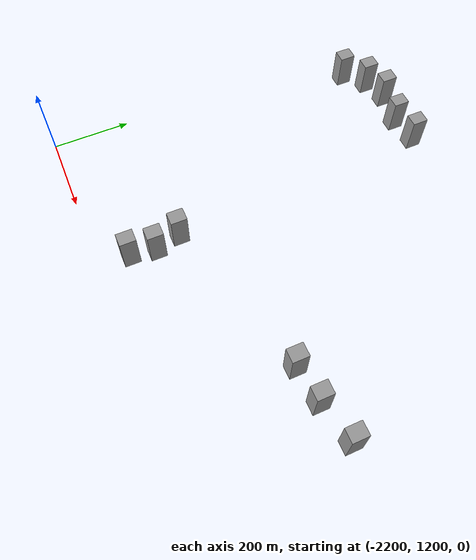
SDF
<sdf version="1.7">
 <world name="default">
  <model name="huge_building_9">
   <link name="link">
    <inertial>
     <mass>137299</mass>
     <inertia>
      <ixx>1.37911e+08</ixx>
      <ixy>0</ixy>
      <ixz>0</ixz>
      <iyy>1.32035e+08</iyy>
      <iyz>0</iyz>
      <izz>3.13216e+07</izz>
     </inertia>
    </inertial>
    <visual name="visual">
     <geometry><box><size>33.3468 40.3177 102.117</size></box></geometry>
     <material>
      <script><name>Gazebo/Grey</name><uri>file://media/materials/scripts/gazebo.material</uri></script>
      <shader type="pixel"/>
     </material>
    </visual>
    <collision name="collision">
     <geometry><box><size>33.3468 40.3177 102.117</size></box></geometry>
     <surface>
      <friction>
       <ode><mu>1</mu><mu2>1</mu2><fdir1>0 0 0</fdir1><slip1>0</slip1><slip2>0</slip2></ode>
       <torsional>
        <coefficient>1</coefficient>
        <patch_radius>0</patch_radius>
        <surface_radius>0</surface_radius>
        <use_patch_radius>1</use_patch_radius>
        <ode><slip>0</slip></ode>
       </torsional>
      </friction>
      <bounce><restitution_coefficient>0</restitution_coefficient><threshold>1e+06</threshold></bounce>
      <contact>
       <collide_without_contact>0</collide_without_contact>
       <collide_without_contact_bitmask>1</collide_without_contact_bitmask>
       <collide_bitmask>1</collide_bitmask>
       <ode>
        <soft_cfm>0</soft_cfm>
        <soft_erp>0.2</soft_erp>
        <kp>1e+13</kp>
        <kd>1</kd>
        <max_vel>0.01</max_vel>
        <min_depth>0</min_depth>
       </ode>
       <bullet>
        <split_impulse>1</split_impulse>
        <split_impulse_penetration_threshold>-0.01</split_impulse_penetration_threshold>
        <soft_cfm>0</soft_cfm>
        <soft_erp>0.2</soft_erp>
        <kp>1e+13</kp>
        <kd>1</kd>
       </bullet>
      </contact>
     </surface>
    </collision>
   </link>
   <static>0</static>
   <pose>-1864.15 2105.7 9 0 -0 0</pose>
  </model>
  <model name="huge_building_61">
   <link name="link">
    <inertial>
     <mass>137299</mass>
     <inertia>
      <ixx>1.37911e+08</ixx>
      <ixy>0</ixy>
      <ixz>0</ixz>
      <iyy>1.32035e+08</iyy>
      <iyz>0</iyz>
      <izz>3.13216e+07</izz>
     </inertia>
    </inertial>
    <visual name="visual">
     <geometry><box><size>33.3468 40.3177 102.117</size></box></geometry>
     <material>
      <script><name>Gazebo/Grey</name><uri>file://media/materials/scripts/gazebo.material</uri></script>
      <shader type="pixel"/>
     </material>
    </visual>
    <collision name="collision">
     <geometry><box><size>33.3468 40.3177 102.117</size></box></geometry>
     <surface>
      <friction>
       <ode><mu>1</mu><mu2>1</mu2><fdir1>0 0 0</fdir1><slip1>0</slip1><slip2>0</slip2></ode>
       <torsional>
        <coefficient>1</coefficient>
        <patch_radius>0</patch_radius>
        <surface_radius>0</surface_radius>
        <use_patch_radius>1</use_patch_radius>
        <ode><slip>0</slip></ode>
       </torsional>
      </friction>
      <bounce><restitution_coefficient>0</restitution_coefficient><threshold>1e+06</threshold></bounce>
      <contact>
       <collide_without_contact>0</collide_without_contact>
       <collide_without_contact_bitmask>1</collide_without_contact_bitmask>
       <collide_bitmask>1</collide_bitmask>
       <ode>
        <soft_cfm>0</soft_cfm>
        <soft_erp>0.2</soft_erp>
        <kp>1e+13</kp>
        <kd>1</kd>
        <max_vel>0.01</max_vel>
        <min_depth>0</min_depth>
       </ode>
       <bullet>
        <split_impulse>1</split_impulse>
        <split_impulse_penetration_threshold>-0.01</split_impulse_penetration_threshold>
        <soft_cfm>0</soft_cfm>
        <soft_erp>0.2</soft_erp>
        <kp>1e+13</kp>
        <kd>1</kd>
       </bullet>
      </contact>
     </surface>
    </collision>
   </link>
   <static>0</static>
   <pose>-1200.47 1555.99 54 0 -0 0</pose>
  </model>
  <model name="huge_building_62">
   <link name="link">
    <inertial>
     <mass>137299</mass>
     <inertia>
      <ixx>1.37911e+08</ixx>
      <ixy>0</ixy>
      <ixz>0</ixz>
      <iyy>1.32035e+08</iyy>
      <iyz>0</iyz>
      <izz>3.13216e+07</izz>
     </inertia>
    </inertial>
    <visual name="visual">
     <geometry><box><size>33.3468 40.3177 102.117</size></box></geometry>
     <material>
      <script><name>Gazebo/Grey</name><uri>file://media/materials/scripts/gazebo.material</uri></script>
      <shader type="pixel"/>
     </material>
    </visual>
    <collision name="collision">
     <geometry><box><size>33.3468 40.3177 102.117</size></box></geometry>
     <surface>
      <friction>
       <ode><mu>1</mu><mu2>1</mu2><fdir1>0 0 0</fdir1><slip1>0</slip1><slip2>0</slip2></ode>
       <torsional>
        <coefficient>1</coefficient>
        <patch_radius>0</patch_radius>
        <surface_radius>0</surface_radius>
        <use_patch_radius>1</use_patch_radius>
        <ode><slip>0</slip></ode>
       </torsional>
      </friction>
      <bounce><restitution_coefficient>0</restitution_coefficient><threshold>1e+06</threshold></bounce>
      <contact>
       <collide_without_contact>0</collide_without_contact>
       <collide_without_contact_bitmask>1</collide_without_contact_bitmask>
       <collide_bitmask>1</collide_bitmask>
       <ode>
        <soft_cfm>0</soft_cfm>
        <soft_erp>0.2</soft_erp>
        <kp>1e+13</kp>
        <kd>1</kd>
        <max_vel>0.01</max_vel>
        <min_depth>0</min_depth>
       </ode>
       <bullet>
        <split_impulse>1</split_impulse>
        <split_impulse_penetration_threshold>-0.01</split_impulse_penetration_threshold>
        <soft_cfm>0</soft_cfm>
        <soft_erp>0.2</soft_erp>
        <kp>1e+13</kp>
        <kd>1</kd>
       </bullet>
      </contact>
     </surface>
    </collision>
   </link>
   <static>0</static>
   <pose>-1298.92 1530.03 61 0 -0 0</pose>
  </model>
  <model name="huge_building_63">
   <link name="link">
    <inertial>
     <mass>137299</mass>
     <inertia>
      <ixx>1.37911e+08</ixx>
      <ixy>0</ixy>
      <ixz>0</ixz>
      <iyy>1.32035e+08</iyy>
      <iyz>0</iyz>
      <izz>3.13216e+07</izz>
     </inertia>
    </inertial>
    <visual name="visual">
     <geometry><box><size>33.3468 40.3177 102.117</size></box></geometry>
     <material>
      <script><name>Gazebo/Grey</name><uri>file://media/materials/scripts/gazebo.material</uri></script>
      <shader type="pixel"/>
     </material>
    </visual>
    <collision name="collision">
     <geometry><box><size>33.3468 40.3177 102.117</size></box></geometry>
     <surface>
      <friction>
       <ode><mu>1</mu><mu2>1</mu2><fdir1>0 0 0</fdir1><slip1>0</slip1><slip2>0</slip2></ode>
       <torsional>
        <coefficient>1</coefficient>
        <patch_radius>0</patch_radius>
        <surface_radius>0</surface_radius>
        <use_patch_radius>1</use_patch_radius>
        <ode><slip>0</slip></ode>
       </torsional>
      </friction>
      <bounce><restitution_coefficient>0</restitution_coefficient><threshold>1e+06</threshold></bounce>
      <contact>
       <collide_without_contact>0</collide_without_contact>
       <collide_without_contact_bitmask>1</collide_without_contact_bitmask>
       <collide_bitmask>1</collide_bitmask>
       <ode>
        <soft_cfm>0</soft_cfm>
        <soft_erp>0.2</soft_erp>
        <kp>1e+13</kp>
        <kd>1</kd>
        <max_vel>0.01</max_vel>
        <min_depth>0</min_depth>
       </ode>
       <bullet>
        <split_impulse>1</split_impulse>
        <split_impulse_penetration_threshold>-0.01</split_impulse_penetration_threshold>
        <soft_cfm>0</soft_cfm>
        <soft_erp>0.2</soft_erp>
        <kp>1e+13</kp>
        <kd>1</kd>
       </bullet>
      </contact>
     </surface>
    </collision>
   </link>
   <static>0</static>
   <pose>-1388.72 1518.67 61 0 -0 0</pose>
  </model>
  <model name="huge_building_67">
   <link name="link">
    <inertial>
     <mass>137299</mass>
     <inertia>
      <ixx>1.37911e+08</ixx>
      <ixy>0</ixy>
      <ixz>0</ixz>
      <iyy>1.32035e+08</iyy>
      <iyz>0</iyz>
      <izz>3.13216e+07</izz>
     </inertia>
    </inertial>
    <visual name="visual">
     <geometry><box><size>33.3468 40.3177 102.117</size></box></geometry>
     <material>
      <script><name>Gazebo/Grey</name><uri>file://media/materials/scripts/gazebo.material</uri></script>
      <shader type="pixel"/>
     </material>
    </visual>
    <collision name="collision">
     <geometry><box><size>33.3468 40.3177 102.117</size></box></geometry>
     <surface>
      <friction>
       <ode><mu>1</mu><mu2>1</mu2><fdir1>0 0 0</fdir1><slip1>0</slip1><slip2>0</slip2></ode>
       <torsional>
        <coefficient>1</coefficient>
        <patch_radius>0</patch_radius>
        <surface_radius>0</surface_radius>
        <use_patch_radius>1</use_patch_radius>
        <ode><slip>0</slip></ode>
       </torsional>
      </friction>
      <bounce><restitution_coefficient>0</restitution_coefficient><threshold>1e+06</threshold></bounce>
      <contact>
       <collide_without_contact>0</collide_without_contact>
       <collide_without_contact_bitmask>1</collide_without_contact_bitmask>
       <collide_bitmask>1</collide_bitmask>
       <ode>
        <soft_cfm>0</soft_cfm>
        <soft_erp>0.2</soft_erp>
        <kp>1e+13</kp>
        <kd>1</kd>
        <max_vel>0.01</max_vel>
        <min_depth>0</min_depth>
       </ode>
       <bullet>
        <split_impulse>1</split_impulse>
        <split_impulse_penetration_threshold>-0.01</split_impulse_penetration_threshold>
        <soft_cfm>0</soft_cfm>
        <soft_erp>0.2</soft_erp>
        <kp>1e+13</kp>
        <kd>1</kd>
       </bullet>
      </contact>
     </surface>
    </collision>
   </link>
   <static>0</static>
   <pose>-1797.04 1279.27 48 0 -0 0</pose>
  </model>
  <model name="huge_building_68">
   <link name="link">
    <inertial>
     <mass>137299</mass>
     <inertia>
      <ixx>1.37911e+08</ixx>
      <ixy>0</ixy>
      <ixz>0</ixz>
      <iyy>1.32035e+08</iyy>
      <iyz>0</iyz>
      <izz>3.13216e+07</izz>
     </inertia>
    </inertial>
    <visual name="visual">
     <geometry><box><size>33.3468 40.3177 102.117</size></box></geometry>
     <material>
      <script><name>Gazebo/Grey</name><uri>file://media/materials/scripts/gazebo.material</uri></script>
      <shader type="pixel"/>
     </material>
    </visual>
    <collision name="collision">
     <geometry><box><size>33.3468 40.3177 102.117</size></box></geometry>
     <surface>
      <friction>
       <ode><mu>1</mu><mu2>1</mu2><fdir1>0 0 0</fdir1><slip1>0</slip1><slip2>0</slip2></ode>
       <torsional>
        <coefficient>1</coefficient>
        <patch_radius>0</patch_radius>
        <surface_radius>0</surface_radius>
        <use_patch_radius>1</use_patch_radius>
        <ode><slip>0</slip></ode>
       </torsional>
      </friction>
      <bounce><restitution_coefficient>0</restitution_coefficient><threshold>1e+06</threshold></bounce>
      <contact>
       <collide_without_contact>0</collide_without_contact>
       <collide_without_contact_bitmask>1</collide_without_contact_bitmask>
       <collide_bitmask>1</collide_bitmask>
       <ode>
        <soft_cfm>0</soft_cfm>
        <soft_erp>0.2</soft_erp>
        <kp>1e+13</kp>
        <kd>1</kd>
        <max_vel>0.01</max_vel>
        <min_depth>0</min_depth>
       </ode>
       <bullet>
        <split_impulse>1</split_impulse>
        <split_impulse_penetration_threshold>-0.01</split_impulse_penetration_threshold>
        <soft_cfm>0</soft_cfm>
        <soft_erp>0.2</soft_erp>
        <kp>1e+13</kp>
        <kd>1</kd>
       </bullet>
      </contact>
     </surface>
    </collision>
   </link>
   <static>0</static>
   <pose>-1790.33 1343.06 43 0 -0 0</pose>
  </model>
  <model name="huge_building_69">
   <link name="link">
    <inertial>
     <mass>137299</mass>
     <inertia>
      <ixx>1.37911e+08</ixx>
      <ixy>0</ixy>
      <ixz>0</ixz>
      <iyy>1.32035e+08</iyy>
      <iyz>0</iyz>
      <izz>3.13216e+07</izz>
     </inertia>
    </inertial>
    <visual name="visual">
     <geometry><box><size>33.3468 40.3177 102.117</size></box></geometry>
     <material>
      <script><name>Gazebo/Grey</name><uri>file://media/materials/scripts/gazebo.material</uri></script>
      <shader type="pixel"/>
     </material>
    </visual>
    <collision name="collision">
     <geometry><box><size>33.3468 40.3177 102.117</size></box></geometry>
     <surface>
      <friction>
       <ode><mu>1</mu><mu2>1</mu2><fdir1>0 0 0</fdir1><slip1>0</slip1><slip2>0</slip2></ode>
       <torsional>
        <coefficient>1</coefficient>
        <patch_radius>0</patch_radius>
        <surface_radius>0</surface_radius>
        <use_patch_radius>1</use_patch_radius>
        <ode><slip>0</slip></ode>
       </torsional>
      </friction>
      <bounce><restitution_coefficient>0</restitution_coefficient><threshold>1e+06</threshold></bounce>
      <contact>
       <collide_without_contact>0</collide_without_contact>
       <collide_without_contact_bitmask>1</collide_without_contact_bitmask>
       <collide_bitmask>1</collide_bitmask>
       <ode>
        <soft_cfm>0</soft_cfm>
        <soft_erp>0.2</soft_erp>
        <kp>1e+13</kp>
        <kd>1</kd>
        <max_vel>0.01</max_vel>
        <min_depth>0</min_depth>
       </ode>
       <bullet>
        <split_impulse>1</split_impulse>
        <split_impulse_penetration_threshold>-0.01</split_impulse_penetration_threshold>
        <soft_cfm>0</soft_cfm>
        <soft_erp>0.2</soft_erp>
        <kp>1e+13</kp>
        <kd>1</kd>
       </bullet>
      </contact>
     </surface>
    </collision>
   </link>
   <static>0</static>
   <pose>-1802.79 1406.43 51 0 -0 0</pose>
  </model>
  <model name="huge_building_70">
   <link name="link">
    <inertial>
     <mass>137299</mass>
     <inertia>
      <ixx>1.37911e+08</ixx>
      <ixy>0</ixy>
      <ixz>0</ixz>
      <iyy>1.32035e+08</iyy>
      <iyz>0</iyz>
      <izz>3.13216e+07</izz>
     </inertia>
    </inertial>
    <visual name="visual">
     <geometry><box><size>33.3468 40.3177 102.117</size></box></geometry>
     <material>
      <script><name>Gazebo/Grey</name><uri>file://media/materials/scripts/gazebo.material</uri></script>
      <shader type="pixel"/>
     </material>
    </visual>
    <collision name="collision">
     <geometry><box><size>33.3468 40.3177 102.117</size></box></geometry>
     <surface>
      <friction>
       <ode><mu>1</mu><mu2>1</mu2><fdir1>0 0 0</fdir1><slip1>0</slip1><slip2>0</slip2></ode>
       <torsional>
        <coefficient>1</coefficient>
        <patch_radius>0</patch_radius>
        <surface_radius>0</surface_radius>
        <use_patch_radius>1</use_patch_radius>
        <ode><slip>0</slip></ode>
       </torsional>
      </friction>
      <bounce><restitution_coefficient>0</restitution_coefficient><threshold>1e+06</threshold></bounce>
      <contact>
       <collide_without_contact>0</collide_without_contact>
       <collide_without_contact_bitmask>1</collide_without_contact_bitmask>
       <collide_bitmask>1</collide_bitmask>
       <ode>
        <soft_cfm>0</soft_cfm>
        <soft_erp>0.2</soft_erp>
        <kp>1e+13</kp>
        <kd>1</kd>
        <max_vel>0.01</max_vel>
        <min_depth>0</min_depth>
       </ode>
       <bullet>
        <split_impulse>1</split_impulse>
        <split_impulse_penetration_threshold>-0.01</split_impulse_penetration_threshold>
        <soft_cfm>0</soft_cfm>
        <soft_erp>0.2</soft_erp>
        <kp>1e+13</kp>
        <kd>1</kd>
       </bullet>
      </contact>
     </surface>
    </collision>
   </link>
   <static>0</static>
   <pose>-1943.47 2097.41 3 0 -0 0</pose>
  </model>
  <model name="huge_building_71">
   <link name="link">
    <inertial>
     <mass>137299</mass>
     <inertia>
      <ixx>1.37911e+08</ixx>
      <ixy>0</ixy>
      <ixz>0</ixz>
      <iyy>1.32035e+08</iyy>
      <iyz>0</iyz>
      <izz>3.13216e+07</izz>
     </inertia>
    </inertial>
    <visual name="visual">
     <geometry><box><size>33.3468 40.3177 102.117</size></box></geometry>
     <material>
      <script><name>Gazebo/Grey</name><uri>file://media/materials/scripts/gazebo.material</uri></script>
      <shader type="pixel"/>
     </material>
    </visual>
    <collision name="collision">
     <geometry><box><size>33.3468 40.3177 102.117</size></box></geometry>
     <surface>
      <friction>
       <ode><mu>1</mu><mu2>1</mu2><fdir1>0 0 0</fdir1><slip1>0</slip1><slip2>0</slip2></ode>
       <torsional>
        <coefficient>1</coefficient>
        <patch_radius>0</patch_radius>
        <surface_radius>0</surface_radius>
        <use_patch_radius>1</use_patch_radius>
        <ode><slip>0</slip></ode>
       </torsional>
      </friction>
      <bounce><restitution_coefficient>0</restitution_coefficient><threshold>1e+06</threshold></bounce>
      <contact>
       <collide_without_contact>0</collide_without_contact>
       <collide_without_contact_bitmask>1</collide_without_contact_bitmask>
       <collide_bitmask>1</collide_bitmask>
       <ode>
        <soft_cfm>0</soft_cfm>
        <soft_erp>0.2</soft_erp>
        <kp>1e+13</kp>
        <kd>1</kd>
        <max_vel>0.01</max_vel>
        <min_depth>0</min_depth>
       </ode>
       <bullet>
        <split_impulse>1</split_impulse>
        <split_impulse_penetration_threshold>-0.01</split_impulse_penetration_threshold>
        <soft_cfm>0</soft_cfm>
        <soft_erp>0.2</soft_erp>
        <kp>1e+13</kp>
        <kd>1</kd>
       </bullet>
      </contact>
     </surface>
    </collision>
   </link>
   <static>0</static>
   <pose>-2024.91 2105.28 14 0 -0 0</pose>
  </model>
  <model name="huge_building_72">
   <link name="link">
    <inertial>
     <mass>137299</mass>
     <inertia>
      <ixx>1.37911e+08</ixx>
      <ixy>0</ixy>
      <ixz>0</ixz>
      <iyy>1.32035e+08</iyy>
      <iyz>0</iyz>
      <izz>3.13216e+07</izz>
     </inertia>
    </inertial>
    <visual name="visual">
     <geometry><box><size>33.3468 40.3177 102.117</size></box></geometry>
     <material>
      <script><name>Gazebo/Grey</name><uri>file://media/materials/scripts/gazebo.material</uri></script>
      <shader type="pixel"/>
     </material>
    </visual>
    <collision name="collision">
     <geometry><box><size>33.3468 40.3177 102.117</size></box></geometry>
     <surface>
      <friction>
       <ode><mu>1</mu><mu2>1</mu2><fdir1>0 0 0</fdir1><slip1>0</slip1><slip2>0</slip2></ode>
       <torsional>
        <coefficient>1</coefficient>
        <patch_radius>0</patch_radius>
        <surface_radius>0</surface_radius>
        <use_patch_radius>1</use_patch_radius>
        <ode><slip>0</slip></ode>
       </torsional>
      </friction>
      <bounce><restitution_coefficient>0</restitution_coefficient><threshold>1e+06</threshold></bounce>
      <contact>
       <collide_without_contact>0</collide_without_contact>
       <collide_without_contact_bitmask>1</collide_without_contact_bitmask>
       <collide_bitmask>1</collide_bitmask>
       <ode>
        <soft_cfm>0</soft_cfm>
        <soft_erp>0.2</soft_erp>
        <kp>1e+13</kp>
        <kd>1</kd>
        <max_vel>0.01</max_vel>
        <min_depth>0</min_depth>
       </ode>
       <bullet>
        <split_impulse>1</split_impulse>
        <split_impulse_penetration_threshold>-0.01</split_impulse_penetration_threshold>
        <soft_cfm>0</soft_cfm>
        <soft_erp>0.2</soft_erp>
        <kp>1e+13</kp>
        <kd>1</kd>
       </bullet>
      </contact>
     </surface>
    </collision>
   </link>
   <static>0</static>
   <pose>-2097.48 2090.02 5 0 -0 0</pose>
  </model>
  <model name="huge_building_73">
   <link name="link">
    <inertial>
     <mass>137299</mass>
     <inertia>
      <ixx>1.37911e+08</ixx>
      <ixy>0</ixy>
      <ixz>0</ixz>
      <iyy>1.32035e+08</iyy>
      <iyz>0</iyz>
      <izz>3.13216e+07</izz>
     </inertia>
    </inertial>
    <visual name="visual">
     <geometry><box><size>33.3468 40.3177 102.117</size></box></geometry>
     <material>
      <script><name>Gazebo/Grey</name><uri>file://media/materials/scripts/gazebo.material</uri></script>
      <shader type="pixel"/>
     </material>
    </visual>
    <collision name="collision">
     <geometry><box><size>33.3468 40.3177 102.117</size></box></geometry>
     <surface>
      <friction>
       <ode><mu>1</mu><mu2>1</mu2><fdir1>0 0 0</fdir1><slip1>0</slip1><slip2>0</slip2></ode>
       <torsional>
        <coefficient>1</coefficient>
        <patch_radius>0</patch_radius>
        <surface_radius>0</surface_radius>
        <use_patch_radius>1</use_patch_radius>
        <ode><slip>0</slip></ode>
       </torsional>
      </friction>
      <bounce><restitution_coefficient>0</restitution_coefficient><threshold>1e+06</threshold></bounce>
      <contact>
       <collide_without_contact>0</collide_without_contact>
       <collide_without_contact_bitmask>1</collide_without_contact_bitmask>
       <collide_bitmask>1</collide_bitmask>
       <ode>
        <soft_cfm>0</soft_cfm>
        <soft_erp>0.2</soft_erp>
        <kp>1e+13</kp>
        <kd>1</kd>
        <max_vel>0.01</max_vel>
        <min_depth>0</min_depth>
       </ode>
       <bullet>
        <split_impulse>1</split_impulse>
        <split_impulse_penetration_threshold>-0.01</split_impulse_penetration_threshold>
        <soft_cfm>0</soft_cfm>
        <soft_erp>0.2</soft_erp>
        <kp>1e+13</kp>
        <kd>1</kd>
       </bullet>
      </contact>
     </surface>
    </collision>
   </link>
   <static>0</static>
   <pose>-2150.63 2042.82 5 0 -0 0</pose>
  </model>
 </world>
</sdf>
